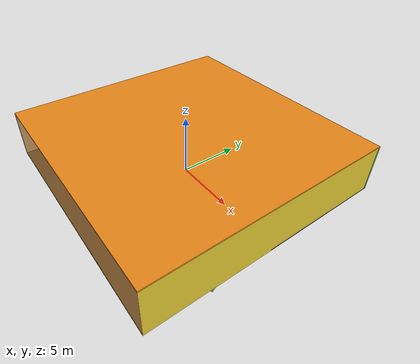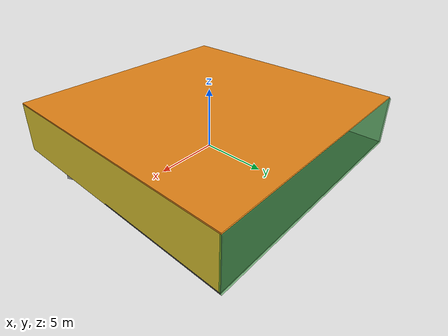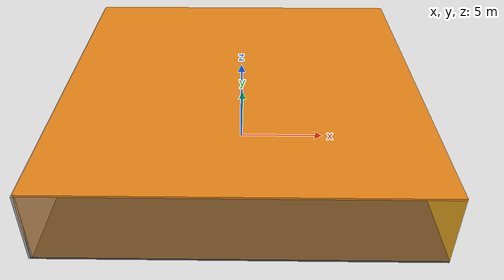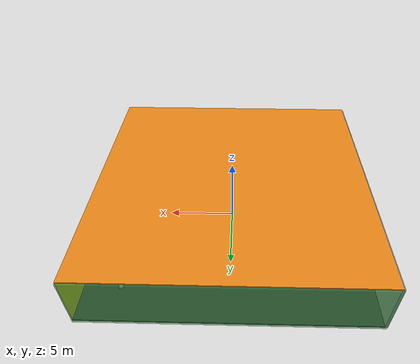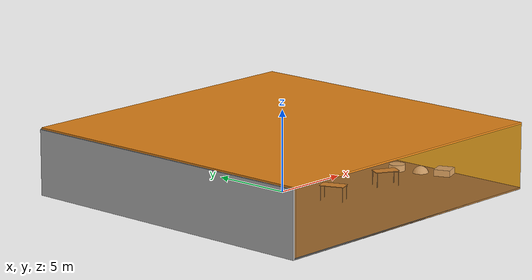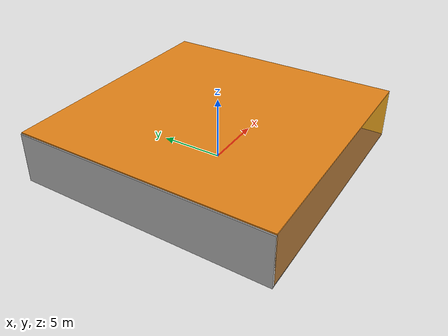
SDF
<sdf version="1.4">
 <world name="default">
  <physics type="ode">
   <max_step_size>0.001</max_step_size>
   <real_time_factor>1</real_time_factor>
   <real_time_update_rate>1000</real_time_update_rate>
   <gravity>0 0 -9.8</gravity>
  </physics>
  <scene><ambient>0.4 0.4 0.4 1</ambient><background>0.7 0.7 0.7 1</background><shadows>1</shadows></scene>
  <model name="Surrounding">
   <static>1</static>
   <link name="Ceiling">
    <collision name="Ceiling_Collision"><geometry><box><size>20 20 0.1</size></box></geometry></collision>
    <visual name="Ceiling_Visual">
     <geometry><box><size>20 20 0.1</size></box></geometry>
     <material>
      <script><uri>file://media/materials/scripts/gazebo.material</uri><name>Gazebo/Orange</name></script>
     </material>
    </visual>
    <pose>0 0 4.05 0 0 0</pose>
   </link>
   <link name="Wall_South">
    <collision name="Wall_South_Collision">
     <geometry><box><size>20 0 4</size></box></geometry>
     <pose>0 0 2 0 -0 0</pose>
    </collision>
    <visual name="Wall_South_Visual">
     <pose>0 0 2 0 -0 0</pose>
     <geometry><box><size>20 0 4</size></box></geometry>
     <material>
      <script>
       <uri>file://media/materials/scripts/gazebo.material</uri>
       <name>Gazebo/OrangeTransparent</name>
      </script>
     </material>
    </visual>
    <velocity_decay><linear>0</linear><angular>0</angular></velocity_decay>
    <pose>0 -10 0 0 -0 0</pose>
   </link>
   <link name="Wall_East">
    <collision name="Wall_21_Collision">
     <geometry><box><size>20 0 4</size></box></geometry>
     <pose>0 0 2 0 -0 0</pose>
    </collision>
    <visual name="Wall_21_Visual">
     <pose>0 0 2 0 -0 0</pose>
     <geometry><box><size>20 0 4</size></box></geometry>
     <material>
      <script><uri>file://media/materials/scripts/gazebo.material</uri><name>Gazebo/ZincYellow</name></script>
     </material>
    </visual>
    <velocity_decay><linear>0</linear><angular>0</angular></velocity_decay>
    <pose>10 0 0 0 -0 1.5708</pose>
   </link>
   <link name="Wall_North">
    <collision name="Wall_22_Collision">
     <geometry><box><size>20 0.2 4</size></box></geometry>
     <pose>0 0 2 0 -0 0</pose>
    </collision>
    <visual name="Wall_22_Visual">
     <pose>0 0 2 0 -0 0</pose>
     <geometry><box><size>20 0.2 4</size></box></geometry>
     <material>
      <script><uri>file://media/materials/scripts/gazebo.material</uri><name>Gazebo/GreenTransparent</name></script>
     </material>
    </visual>
    <velocity_decay><linear>0</linear><angular>0</angular></velocity_decay>
    <pose>0 10 0 0 -0 0</pose>
   </link>
   <link name="Wall_West">
    <collision name="Wall_23_Collision">
     <geometry><box><size>20 0.2 4</size></box></geometry>
     <pose>0 0 2 0 -0 0</pose>
    </collision>
    <visual name="Wall_23_Visual">
     <pose>0 0 2 0 -0 0</pose>
     <geometry><box><size>20 0.2 4</size></box></geometry>
     <material>
      <script><uri>file://media/materials/scripts/gazebo.material</uri><name>Gazebo/LightOn</name></script>
     </material>
    </visual>
    <velocity_decay><linear>0</linear><angular>0</angular></velocity_decay>
    <pose>-10 0 0 0 0 -1.5708</pose>
   </link>
   <link name="Ground_link">
    <collision name="collision">
     <pose>0 0 .05 0 -0 0</pose>
     <geometry><box><size>20 20 0.1</size></box></geometry>
    </collision>
    <visual name="visual">
     <pose>0 0 .05 0 -0 0</pose>
     <geometry><box><size>20 20 0.1</size></box></geometry>
     <material>
      <script><uri>file://media/materials/scripts/gazebo.material</uri><name>Gazebo/DarkGrey</name></script>
     </material>
    </visual>
   </link>
   <static>1</static>
  </model>
  <spherical_coordinates>
   <surface_model>EARTH_WGS84</surface_model>
   <latitude_deg>0</latitude_deg>
   <longitude_deg>0</longitude_deg>
   <elevation>0</elevation>
   <heading_deg>0</heading_deg>
  </spherical_coordinates>
  <light name="lightball_0" type="diffuse">
   <diffuse>0.8 0.8 0.8 1</diffuse>
   <specular>0.2 0.2 0.2 1</specular>
   <attenuation>
    <range>100</range>
    <constant>0.7</constant>
    <linear>0.01</linear>
    <quadratic>0.001</quadratic>
   </attenuation>
   <direction>-0.5 0.1 -0.9</direction>
   <pose>1.84387288015 -7.67465558917 3.59527582888 0 0 0</pose>
  </light>
  <include><uri>model://cabinet</uri><pose>-6.40043282794 0.564933631447 0 0 0 3.03281321915</pose></include>
  <include><uri>model://cabinet</uri><pose>-6.33812625319 4.04668616565 0 0 0 3.01290019233</pose></include>
  <include><uri>model://table</uri><pose>-2.45490371096 3.64050881448 0 0 0 2.38748446542</pose></include>
  <include><uri>model://table</uri><pose>0.450307831596 -3.62550195857 0 0 0 1.96555417857</pose></include>
  <include><uri>model://table</uri><pose>5.02876996963 -3.73008456683 0 0 0 2.65397231479</pose></include>
  <include>
   <uri>model://textured_shapes</uri>
   <pose>8.69986928913 -3.39847405938 0 0 0 0.373879063752</pose>
  </include>
  <include><uri>model://table</uri><pose>8.52957180512 4.78400198149 0 0 0 1.27509976026</pose></include>
  <include>
   <uri>model://construction_cone</uri>
   <pose>7.47789858226 7.40792083639 0 0 0 1.11975034543</pose>
  </include>
 </world>
</sdf>

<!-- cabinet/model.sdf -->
<sdf version="1.5">
  <model name="cabinet">
    <static>true</static>
    <link name="cabinet_bottom_plate">
      <inertial>
        <pose>0 0 -1 0 0 0</pose>
        <inertia>
          <ixx>2.050000</ixx>
          <ixy>0</ixy>
          <ixz>0</ixz>
          <iyy>2.050000</iyy>
          <iyz>0</iyz>
          <izz>2.050000</izz>
        </inertia>
        <mass>25.000000</mass>
      </inertial>
      <collision name="cabinet_bottom_plate_geom">
        <pose>0 0 0.010000 0 0 0</pose>
        <geometry>
          <box>
            <size>0.450000 0.450000 0.020000</size>
          </box>
        </geometry>
      </collision>
      <visual name="cabinet_bottom_plate_geom_visual">
        <pose>0 0 0.010000 0 0 0</pose>
        <geometry>
          <box>
            <size>0.450000 0.450000 0.020000</size>
          </box>
        </geometry>
        <material>
          <script>
            <uri>model://media/materials/scripts/gazebo.material</uri>
            <name>Gazebo/Wood</name>
          </script>
        </material>
      </visual>
      <collision name="cabinet_bottom_plate_geom_cabinet_back_plate">
        <pose>0.235000 0 0.510000 0 0 0</pose>
        <geometry>
          <box>
            <size>0.020000 0.450000 1.020000</size>
          </box>
        </geometry>
      </collision>
      <visual name="cabinet_bottom_plate_geom_cabinet_back_plate_visual">
        <pose>0.235000 0 0.510000 0 0 0</pose>
        <geometry>
          <box>
            <size>0.020000 0.450000 1.020000</size>
          </box>
        </geometry>
        <material>
          <script>
            <uri>model://media/materials/scripts/gazebo.material</uri>
            <name>Gazebo/Wood</name>
          </script>
        </material>
      </visual>
      <collision name="cabinet_bottom_plate_geom_cabinet_left_plate">
        <pose>0 0.235000 0.510000 0 0 0</pose>
        <geometry>
          <box>
            <size>0.450000 0.020000 1.020000</size>
          </box>
        </geometry>
      </collision>
      <visual name="cabinet_bottom_plate_geom_cabinet_left_plate_visual">
        <pose>0 0.235000 0.510000 0 0 0</pose>
        <geometry>
          <box>
            <size>0.450000 0.020000 1.020000</size>
          </box>
        </geometry>
        <material>
          <script>
            <uri>model://media/materials/scripts/gazebo.material</uri>
            <name>Gazebo/Wood</name>
          </script>
        </material>
      </visual>
      <collision name="cabinet_bottom_plate_geom_cabinet_middle_plate">
        <pose>0 0 0.510000 0 0 0</pose>
        <geometry>
          <box>
            <size>0.450000 0.450000 0.020000</size>
          </box>
        </geometry>
      </collision>
      <visual name="cabinet_bottom_plate_geom_cabinet_middle_plate_visual">
        <pose>0 0 0.510000 0 0 0</pose>
        <geometry>
          <box>
            <size>0.450000 0.450000 0.020000</size>
          </box>
        </geometry>
        <material>
          <script>
            <uri>model://media/materials/scripts/gazebo.material</uri>
            <name>Gazebo/Wood</name>
          </script>
        </material>
      </visual>
      <collision name="cabinet_bottom_plate_geom_cabinet_right_plate">
        <pose>0 -0.235000 0.510000 0 0 0</pose>
        <geometry>
          <box>
            <size>0.450000 0.020000 1.020000</size>
          </box>
        </geometry>
      </collision>
      <visual name="cabinet_bottom_plate_geom_cabinet_right_plate_visual">
        <pose>0 -0.235000 0.510000 0 0 0</pose>
        <geometry>
          <box>
            <size>0.450000 0.020000 1.020000</size>
          </box>
        </geometry>
        <material>
          <script>
            <uri>model://media/materials/scripts/gazebo.material</uri>
            <name>Gazebo/Wood</name>
          </script>
        </material>
      </visual>
      <collision name="cabinet_bottom_plate_geom_cabinet_top_plate">
        <pose>0 0 1.010000 0 0 0</pose>
        <geometry>
          <box>
            <size>0.450000 0.450000 0.020000</size>
          </box>
        </geometry>
      </collision>
      <visual name="cabinet_bottom_plate_geom_cabinet_top_plate_visual">
        <pose>0 0 1.010000 0 0 0</pose>
        <geometry>
          <box>
            <size>0.450000 0.450000 0.020000</size>
          </box>
        </geometry>
        <material>
          <script>
            <uri>model://media/materials/scripts/gazebo.material</uri>
            <name>Gazebo/Wood</name>
          </script>
        </material>
      </visual>
    </link>
  </model>
</sdf>

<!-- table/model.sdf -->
<sdf version="1.5">
  <model name="table">
    <static>true</static>
    <link name="link">
      <collision name="surface">
        <pose>0 0 1.0 0 0 0</pose>
        <geometry>
          <box>
            <size>1.5 0.8 0.03</size>
          </box>
        </geometry>
        <surface>
          <friction>
            <ode>
              <mu>0.6</mu>
              <mu2>0.6</mu2>
            </ode>
          </friction>
        </surface>
      </collision>
      <visual name="visual1">
        <pose>0 0 1.0 0 0 0</pose>
        <geometry>
          <box>
            <size>1.5 0.8 0.03</size>
          </box>
        </geometry>
        <material>
          <script>
            <uri>model://media/materials/scripts/gazebo.material</uri>
            <name>Gazebo/Wood</name>
          </script>
        </material>
      </visual>
      <collision name="front_left_leg">
        <pose>0.68 0.38 0.5 0 0 0</pose>
        <geometry>
          <cylinder>
            <radius>0.02</radius>
            <length>1.0</length>
          </cylinder>
        </geometry>
      </collision>
      <visual name="front_left_leg">
        <pose>0.68 0.38 0.5 0 0 0</pose>
        <geometry>
          <cylinder>
            <radius>0.02</radius>
            <length>1.0</length>
          </cylinder>
        </geometry>
        <material>
          <script>
            <uri>model://media/materials/scripts/gazebo.material</uri>
            <name>Gazebo/Grey</name>
          </script>
        </material>
      </visual>
      <collision name="front_right_leg">
        <pose>0.68 -0.38 0.5 0 0 0</pose>
        <geometry>
          <cylinder>
            <radius>0.02</radius>
            <length>1.0</length>
          </cylinder>
        </geometry>
      </collision>
      <visual name="front_right_leg">
        <pose>0.68 -0.38 0.5 0 0 0</pose>
        <geometry>
          <cylinder>
            <radius>0.02</radius>
            <length>1.0</length>
          </cylinder>
        </geometry>
        <material>
          <script>
            <uri>model://media/materials/scripts/gazebo.material</uri>
            <name>Gazebo/Grey</name>
          </script>
        </material>
      </visual>
      <collision name="back_right_leg">
        <pose>-0.68 -0.38 0.5 0 0 0</pose>
        <geometry>
          <cylinder>
            <radius>0.02</radius>
            <length>1.0</length>
          </cylinder>
        </geometry>
      </collision>
      <visual name="back_right_leg">
        <pose>-0.68 -0.38 0.5 0 0 0</pose>
        <geometry>
          <cylinder>
            <radius>0.02</radius>
            <length>1.0</length>
          </cylinder>
        </geometry>
        <material>
          <script>
            <uri>model://media/materials/scripts/gazebo.material</uri>
            <name>Gazebo/Grey</name>
          </script>
        </material>
      </visual>
      <collision name="back_left_leg">
        <pose>-0.68 0.38 0.5 0 0 0</pose>
        <geometry>
          <cylinder>
            <radius>0.02</radius>
            <length>1.0</length>
          </cylinder>
        </geometry>
      </collision>
      <visual name="back_left_leg">
        <pose>-0.68 0.38 0.5 0 0 0</pose>
        <geometry>
          <cylinder>
            <radius>0.02</radius>
            <length>1.0</length>
          </cylinder>
        </geometry>
        <material>
          <script>
            <uri>model://media/materials/scripts/gazebo.material</uri>
            <name>Gazebo/Grey</name>
          </script>
        </material>
      </visual>
    </link>
  </model>
</sdf>

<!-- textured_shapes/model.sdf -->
<sdf version="1.6">
  <model name="textured_shapes">
    <pose>0 0 0.5 0 0 0</pose>
    <link name="box">
      <pose>0 -1.5 0 0 0 0</pose>
      <collision name="collision">
        <geometry>
          <box>
            <size>1 1 1</size>
          </box>
        </geometry>
      </collision>
      <visual name="visual">
        <geometry>
          <box>
            <size>1 1 1</size>
          </box>
        </geometry>
        <material>
          <script>
            <uri>model://../model_source/models/textured_shapes/materials/scripts</uri>
            <uri>model://../model_source/models/textured_shapes/materials/textures</uri>
            <name>TexturedShape/Squares</name>
          </script>
        </material>
      </visual>
    </link>
    <link name="sphere">
      <collision name="collision">
        <geometry>
          <sphere>
            <radius>0.5</radius>
          </sphere>
        </geometry>
      </collision>
      <visual name="visual">
        <geometry>
          <sphere>
            <radius>0.5</radius>
          </sphere>
        </geometry>
        <material>
          <script>
            <uri>model://../model_source/models/textured_shapes/materials/scripts</uri>
            <uri>model://../model_source/models/textured_shapes/materials/textures</uri>
            <name>TexturedShape/Squares</name>
          </script>
        </material>
      </visual>
    </link>
    <link name="cylinder">
      <pose>0 1.5 0 0 0 0</pose>
      <collision name="collision">
        <geometry>
          <cylinder>
            <radius>0.5</radius>
            <length>1</length>
          </cylinder>
        </geometry>
      </collision>
      <visual name="visual">
        <geometry>
          <cylinder>
            <radius>0.5</radius>
            <length>1</length>
          </cylinder>
        </geometry>
        <material>
          <script>
            <uri>model://../model_source/models/textured_shapes/materials/scripts</uri>
            <uri>model://../model_source/models/textured_shapes/materials/textures</uri>
            <name>TexturedShape/Squares</name>
          </script>
        </material>
      </visual>
    </link>
  </model>
</sdf>

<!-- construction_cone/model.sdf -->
<sdf version="1.5">
  <model name="Construction Cone">
    <link name="link">
      <collision name="collision">
        <geometry>
          <mesh>
            <scale>10 10 10</scale>
            <uri>file://isr-testbed/construction_cone/meshes/construction_cone.dae</uri>
          </mesh>
        </geometry>
      </collision>
      <visual name="visual">
        <geometry>
          <mesh>
            <scale>10 10 10</scale>
            <uri>file://isr-testbed/construction_cone/meshes/construction_cone.dae</uri>
          </mesh>
        </geometry>
      </visual>
    </link>
  </model>
</sdf>
